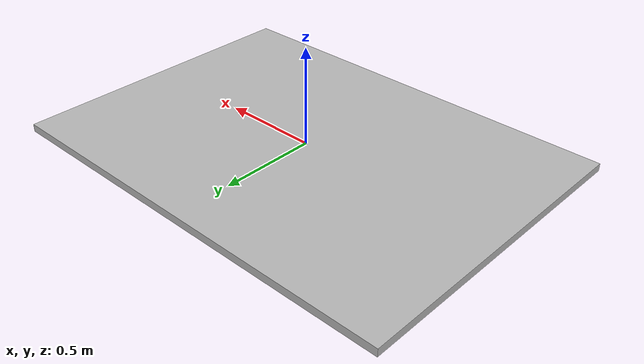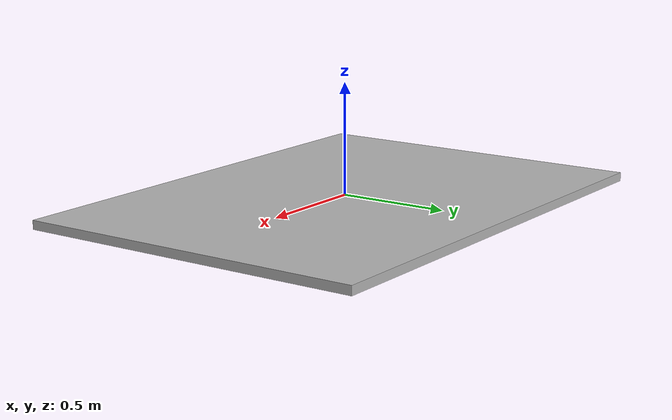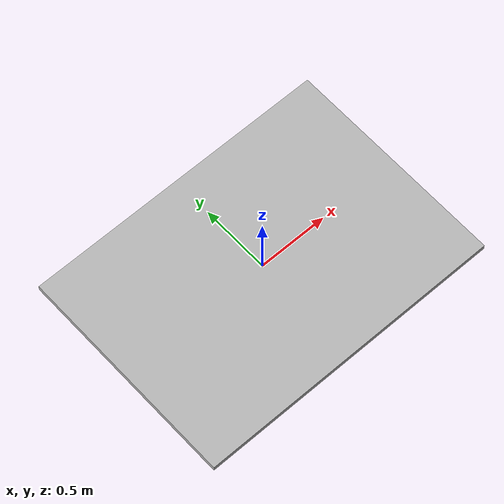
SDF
<?xml version="1.0"?>
<sdf version="1.7">
  <model name="table">
    <link name="table_body">
      <visual name="table_visual">
        <pose>0 0 -0.02 0 0 0</pose>
        <geometry><mesh><uri>table_top.obj</uri></mesh></geometry>
      </visual>
      <collision name="table_top">
        <pose>0 0 -0.1 0 0 0</pose>
        <geometry><box><size>5 5 0.2</size></box></geometry>
      </collision>
    </link>
  </model>
</sdf>
